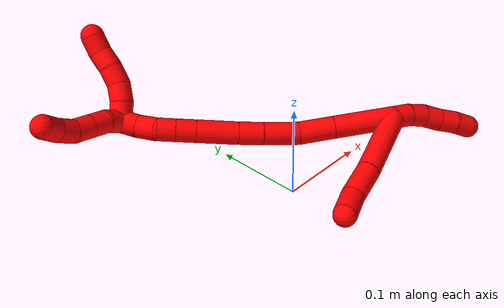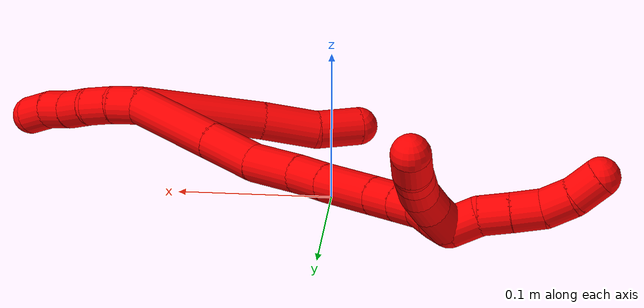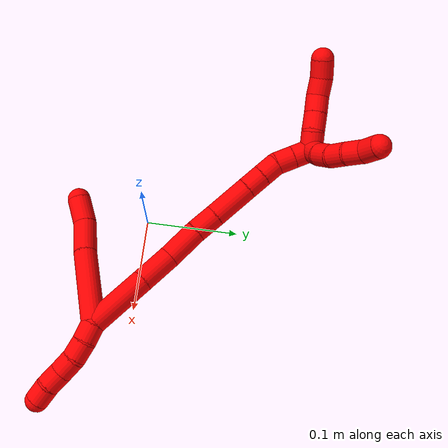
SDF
<sdf version="1.7">
 <world name="default">
  <model name="photoneo_s_sensor">
   <static>1</static>
   <pose>0 0 2 1.57079 1.57079 3.14159</pose>
   <link name="link">
    <inertial><mass>0.1</mass></inertial>
    <sensor name="sensor" type="depth">
     <update_rate>30</update_rate>
     <camera>
      <horizontal_fov>1.22</horizontal_fov>
      <image><width>1920</width><height>1200</height><format>B8G8R8</format></image>
      <clip><near>0.1</near><far>4</far></clip>
      <depth_camera><output>points</output></depth_camera>
     </camera>
     <plugin name="camera_plugin" filename="libgazebo_ros_depth_camera.so">
      <baseline>0.2</baseline>
      <alwaysOn>1</alwaysOn>
      <updateRate>0.0</updateRate>
      <cameraName>camera_ir</cameraName>
      <imageTopicName>/camera/color/image_raw</imageTopicName>
      <cameraInfoTopicName>/camera/color/camera_info</cameraInfoTopicName>
      <depthImageTopicName>/camera/depth/image_raw</depthImageTopicName>
      <depthImageCameraInfoTopicName>/camera/depth/camera_info</depthImageCameraInfoTopicName>
      <pointCloudTopicName>/camera/depth/points</pointCloudTopicName>
      <frameName>fr_optical</frameName>
      <pointCloudCutoff>0.1</pointCloudCutoff>
      <pointCloudCutoffMax>2.0</pointCloudCutoffMax>
      <distortionK1>0</distortionK1>
      <distortionK2>0</distortionK2>
      <distortionK3>0</distortionK3>
      <distortionT1>0</distortionT1>
      <distortionT2>0</distortionT2>
      <CxPrime>0</CxPrime>
      <Cx>0</Cx>
      <Cy>0</Cy>
      <focalLength>0</focalLength>
      <hackBaseline>0</hackBaseline>
     </plugin>
    </sensor>
   </link>
  </model>
  <model name="bin">
   <static>1</static>
   <link name="bottom">
    <collision name="collision-bottom">
     <pose>0 0 -0.01 0 -0 0</pose>
     <geometry><box><size>0.8 0.6 0.02</size></box></geometry>
     <surface>
      <friction><ode><mu>100</mu><mu2>100</mu2></ode></friction>
      <contact><collide_bitmask>65535</collide_bitmask></contact>
     </surface>
    </collision>
   </link>
   <link name="west_wall">
    <collision name="collision-west_wall">
     <pose>-0.41 0 0.1 0 -0 0</pose>
     <geometry><box><size>0.02 0.6 0.2</size></box></geometry>
     <surface>
      <friction><ode><mu>100</mu><mu2>100</mu2></ode></friction>
      <contact><collide_bitmask>65535</collide_bitmask></contact>
     </surface>
    </collision>
   </link>
   <link name="east_wall">
    <collision name="collision-east_wall">
     <pose>0.41 0 0.1 0 -0 0</pose>
     <geometry><box><size>0.02 0.6 0.2</size></box></geometry>
     <surface>
      <friction><ode><mu>100</mu><mu2>100</mu2></ode></friction>
      <contact><collide_bitmask>65535</collide_bitmask></contact>
     </surface>
    </collision>
   </link>
   <link name="south_wall">
    <collision name="collision-south_wall">
     <pose>0 -0.31 0.1 0 -0 0</pose>
     <geometry><box><size>0.8 0.02 0.2</size></box></geometry>
     <surface>
      <friction><ode><mu>100</mu><mu2>100</mu2></ode></friction>
      <contact><collide_bitmask>65535</collide_bitmask></contact>
     </surface>
    </collision>
   </link>
   <link name="north_wall">
    <collision name="collision-north_wall">
     <pose>0 0.31 0.1 0 -0 0</pose>
     <geometry><box><size>0.8 0.02 0.2</size></box></geometry>
     <surface>
      <friction><ode><mu>100</mu><mu2>100</mu2></ode></friction>
      <contact><collide_bitmask>65535</collide_bitmask></contact>
     </surface>
    </collision>
   </link>
  </model>
  <model name="2">
   <static>0</static>
   <link name="2">
    <collision name="collision-cylinder-e_1_2_8">
     <pose>-0.039684 0.00148 -0.012324 -3.02206 -1.26765 2.97913</pose>
     <geometry><cylinder><radius>0.0125</radius><length>0.083159</length></cylinder></geometry>
     <surface>
      <friction><ode><mu>1.16</mu><mu2>1.16</mu2><slip1>0</slip1><slip2>0</slip2></ode></friction>
      <contact><ode><kp>1e+06</kp><kd>1</kd><max_vel>0</max_vel><min_depth>0.001</min_depth></ode></contact>
     </surface>
    </collision>
    <visual name="visual-cylinder-e_1_2_8">
     <pose>-0.039684 0.00148 -0.012324 -3.02206 -1.26765 2.97913</pose>
     <geometry><cylinder><radius>0.0125</radius><length>0.083159</length></cylinder></geometry>
     <material><ambient>1 0 0 1</ambient></material>
    </visual>
    <collision name="collision-cylinder-e_2_8_9">
     <pose>-0.097128 0.005251 -0.03007 -2.74191 -1.25076 2.59463</pose>
     <geometry><cylinder><radius>0.0125</radius><length>0.037421</length></cylinder></geometry>
     <surface>
      <friction><ode><mu>1.16</mu><mu2>1.16</mu2><slip1>0</slip1><slip2>0</slip2></ode></friction>
      <contact><ode><kp>1e+06</kp><kd>1</kd><max_vel>0</max_vel><min_depth>0.001</min_depth></ode></contact>
     </surface>
    </collision>
    <visual name="visual-cylinder-e_2_8_9">
     <pose>-0.097128 0.005251 -0.03007 -2.74191 -1.25076 2.59463</pose>
     <geometry><cylinder><radius>0.0125</radius><length>0.037421</length></cylinder></geometry>
     <material><ambient>1 0 0 1</ambient></material>
    </visual>
    <collision name="collision-cylinder-e_3_9_6">
     <pose>-0.129378 0.006103 -0.037583 2.53883 -1.39744 -2.43281</pose>
     <geometry><cylinder><radius>0.0125</radius><length>0.02942</length></cylinder></geometry>
     <surface>
      <friction><ode><mu>1.16</mu><mu2>1.16</mu2><slip1>0</slip1><slip2>0</slip2></ode></friction>
      <contact><ode><kp>1e+06</kp><kd>1</kd><max_vel>0</max_vel><min_depth>0.001</min_depth></ode></contact>
     </surface>
    </collision>
    <visual name="visual-cylinder-e_3_9_6">
     <pose>-0.129378 0.006103 -0.037583 2.53883 -1.39744 -2.43281</pose>
     <geometry><cylinder><radius>0.0125</radius><length>0.02942</length></cylinder></geometry>
     <material><ambient>1 0 0 1</ambient></material>
    </visual>
    <collision name="collision-cylinder-e_1_2_10">
     <pose>0.008243 -0.00534 -0.001877 1.90886 0.969049 1.27803</pose>
     <geometry><cylinder><radius>0.0125</radius><length>0.02</length></cylinder></geometry>
     <surface>
      <friction><ode><mu>1.16</mu><mu2>1.16</mu2><slip1>0</slip1><slip2>0</slip2></ode></friction>
      <contact><ode><kp>1e+06</kp><kd>1</kd><max_vel>0</max_vel><min_depth>0.001</min_depth></ode></contact>
     </surface>
    </collision>
    <visual name="visual-cylinder-e_1_2_10">
     <pose>0.008243 -0.00534 -0.001877 1.90886 0.969049 1.27803</pose>
     <geometry><cylinder><radius>0.0125</radius><length>0.02</length></cylinder></geometry>
     <material><ambient>1 0 0 1</ambient></material>
    </visual>
    <collision name="collision-cylinder-e_2_10_11">
     <pose>0.023958 -0.016468 -0.007025 2.08507 0.843723 1.31117</pose>
     <geometry><cylinder><radius>0.0125</radius><length>0.02</length></cylinder></geometry>
     <surface>
      <friction><ode><mu>1.16</mu><mu2>1.16</mu2><slip1>0</slip1><slip2>0</slip2></ode></friction>
      <contact><ode><kp>1e+06</kp><kd>1</kd><max_vel>0</max_vel><min_depth>0.001</min_depth></ode></contact>
     </surface>
    </collision>
    <visual name="visual-cylinder-e_2_10_11">
     <pose>0.023958 -0.016468 -0.007025 2.08507 0.843723 1.31117</pose>
     <geometry><cylinder><radius>0.0125</radius><length>0.02</length></cylinder></geometry>
     <material><ambient>1 0 0 1</ambient></material>
    </visual>
    <collision name="collision-cylinder-e_3_11_12">
     <pose>0.037094 -0.028981 -0.015056 2.18685 0.602244 1.08142</pose>
     <geometry><cylinder><radius>0.0125</radius><length>0.02</length></cylinder></geometry>
     <surface>
      <friction><ode><mu>1.16</mu><mu2>1.16</mu2><slip1>0</slip1><slip2>0</slip2></ode></friction>
      <contact><ode><kp>1e+06</kp><kd>1</kd><max_vel>0</max_vel><min_depth>0.001</min_depth></ode></contact>
     </surface>
    </collision>
    <visual name="visual-cylinder-e_3_11_12">
     <pose>0.037094 -0.028981 -0.015056 2.18685 0.602244 1.08142</pose>
     <geometry><cylinder><radius>0.0125</radius><length>0.02</length></cylinder></geometry>
     <material><ambient>1 0 0 1</ambient></material>
    </visual>
    <collision name="collision-cylinder-e_4_12_13">
     <pose>0.048545 -0.042922 -0.023621 2.05592 0.616978 0.971916</pose>
     <geometry><cylinder><radius>0.0125</radius><length>0.02</length></cylinder></geometry>
     <surface>
      <friction><ode><mu>1.16</mu><mu2>1.16</mu2><slip1>0</slip1><slip2>0</slip2></ode></friction>
      <contact><ode><kp>1e+06</kp><kd>1</kd><max_vel>0</max_vel><min_depth>0.001</min_depth></ode></contact>
     </surface>
    </collision>
    <visual name="visual-cylinder-e_4_12_13">
     <pose>0.048545 -0.042922 -0.023621 2.05592 0.616978 0.971916</pose>
     <geometry><cylinder><radius>0.0125</radius><length>0.02</length></cylinder></geometry>
     <material><ambient>1 0 0 1</ambient></material>
    </visual>
    <collision name="collision-cylinder-e_5_13_5">
     <pose>0.060533 -0.056026 -0.032606 2.29235 0.669078 1.31087</pose>
     <geometry><cylinder><radius>0.0125</radius><length>0.02</length></cylinder></geometry>
     <surface>
      <friction><ode><mu>1.16</mu><mu2>1.16</mu2><slip1>0</slip1><slip2>0</slip2></ode></friction>
      <contact><ode><kp>1e+06</kp><kd>1</kd><max_vel>0</max_vel><min_depth>0.001</min_depth></ode></contact>
     </surface>
    </collision>
    <visual name="visual-cylinder-e_5_13_5">
     <pose>0.060533 -0.056026 -0.032606 2.29235 0.669078 1.31087</pose>
     <geometry><cylinder><radius>0.0125</radius><length>0.02</length></cylinder></geometry>
     <material><ambient>1 0 0 1</ambient></material>
    </visual>
    <collision name="collision-cylinder-e_1_2_14">
     <pose>-0.019134 0.027648 0.001197 -1.52752 -0.604947 0.580765</pose>
     <geometry><cylinder><radius>0.0125</radius><length>0.067288</length></cylinder></geometry>
     <surface>
      <friction><ode><mu>1.16</mu><mu2>1.16</mu2><slip1>0</slip1><slip2>0</slip2></ode></friction>
      <contact><ode><kp>1e+06</kp><kd>1</kd><max_vel>0</max_vel><min_depth>0.001</min_depth></ode></contact>
     </surface>
    </collision>
    <visual name="visual-cylinder-e_1_2_14">
     <pose>-0.019134 0.027648 0.001197 -1.52752 -0.604947 0.580765</pose>
     <geometry><cylinder><radius>0.0125</radius><length>0.067288</length></cylinder></geometry>
     <material><ambient>1 0 0 1</ambient></material>
    </visual>
    <collision name="collision-cylinder-e_2_14_15">
     <pose>-0.049393 0.071291 0.002984 -1.53393 -0.607392 0.586666</pose>
     <geometry><cylinder><radius>0.0125</radius><length>0.038986</length></cylinder></geometry>
     <surface>
      <friction><ode><mu>1.16</mu><mu2>1.16</mu2><slip1>0</slip1><slip2>0</slip2></ode></friction>
      <contact><ode><kp>1e+06</kp><kd>1</kd><max_vel>0</max_vel><min_depth>0.001</min_depth></ode></contact>
     </surface>
    </collision>
    <visual name="visual-cylinder-e_2_14_15">
     <pose>-0.049393 0.071291 0.002984 -1.53393 -0.607392 0.586666</pose>
     <geometry><cylinder><radius>0.0125</radius><length>0.038986</length></cylinder></geometry>
     <material><ambient>1 0 0 1</ambient></material>
    </visual>
    <collision name="collision-cylinder-e_3_15_16">
     <pose>-0.072124 0.102686 0.007791 -1.3035 -0.628532 0.48618</pose>
     <geometry><cylinder><radius>0.0125</radius><length>0.039479</length></cylinder></geometry>
     <surface>
      <friction><ode><mu>1.16</mu><mu2>1.16</mu2><slip1>0</slip1><slip2>0</slip2></ode></friction>
      <contact><ode><kp>1e+06</kp><kd>1</kd><max_vel>0</max_vel><min_depth>0.001</min_depth></ode></contact>
     </surface>
    </collision>
    <visual name="visual-cylinder-e_3_15_16">
     <pose>-0.072124 0.102686 0.007791 -1.3035 -0.628532 0.48618</pose>
     <geometry><cylinder><radius>0.0125</radius><length>0.039479</length></cylinder></geometry>
     <material><ambient>1 0 0 1</ambient></material>
    </visual>
    <collision name="collision-cylinder-e_4_16_17">
     <pose>-0.090752 0.129027 0.014929 -1.30993 -0.555037 0.430807</pose>
     <geometry><cylinder><radius>0.0125</radius><length>0.026648</length></cylinder></geometry>
     <surface>
      <friction><ode><mu>1.16</mu><mu2>1.16</mu2><slip1>0</slip1><slip2>0</slip2></ode></friction>
      <contact><ode><kp>1e+06</kp><kd>1</kd><max_vel>0</max_vel><min_depth>0.001</min_depth></ode></contact>
     </surface>
    </collision>
    <visual name="visual-cylinder-e_4_16_17">
     <pose>-0.090752 0.129027 0.014929 -1.30993 -0.555037 0.430807</pose>
     <geometry><cylinder><radius>0.0125</radius><length>0.026648</length></cylinder></geometry>
     <material><ambient>1 0 0 1</ambient></material>
    </visual>
    <collision name="collision-cylinder-e_5_17_18">
     <pose>-0.109784 0.158217 0.023472 -1.27196 -0.561456 0.419512</pose>
     <geometry><cylinder><radius>0.0125</radius><length>0.04512</length></cylinder></geometry>
     <surface>
      <friction><ode><mu>1.16</mu><mu2>1.16</mu2><slip1>0</slip1><slip2>0</slip2></ode></friction>
      <contact><ode><kp>1e+06</kp><kd>1</kd><max_vel>0</max_vel><min_depth>0.001</min_depth></ode></contact>
     </surface>
    </collision>
    <visual name="visual-cylinder-e_5_17_18">
     <pose>-0.109784 0.158217 0.023472 -1.27196 -0.561456 0.419512</pose>
     <geometry><cylinder><radius>0.0125</radius><length>0.04512</length></cylinder></geometry>
     <material><ambient>1 0 0 1</ambient></material>
    </visual>
    <collision name="collision-cylinder-e_6_18_19">
     <pose>-0.127547 0.18526 0.031784 -1.27395 -0.558974 0.418458</pose>
     <geometry><cylinder><radius>0.0125</radius><length>0.021692</length></cylinder></geometry>
     <surface>
      <friction><ode><mu>1.16</mu><mu2>1.16</mu2><slip1>0</slip1><slip2>0</slip2></ode></friction>
      <contact><ode><kp>1e+06</kp><kd>1</kd><max_vel>0</max_vel><min_depth>0.001</min_depth></ode></contact>
     </surface>
    </collision>
    <visual name="visual-cylinder-e_6_18_19">
     <pose>-0.127547 0.18526 0.031784 -1.27395 -0.558974 0.418458</pose>
     <geometry><cylinder><radius>0.0125</radius><length>0.021692</length></cylinder></geometry>
     <material><ambient>1 0 0 1</ambient></material>
    </visual>
    <collision name="collision-cylinder-e_7_19_20">
     <pose>-0.138592 0.202258 0.036968 -1.27559 -0.552939 0.414527</pose>
     <geometry><cylinder><radius>0.0125</radius><length>0.020155</length></cylinder></geometry>
     <surface>
      <friction><ode><mu>1.16</mu><mu2>1.16</mu2><slip1>0</slip1><slip2>0</slip2></ode></friction>
      <contact><ode><kp>1e+06</kp><kd>1</kd><max_vel>0</max_vel><min_depth>0.001</min_depth></ode></contact>
     </surface>
    </collision>
    <visual name="visual-cylinder-e_7_19_20">
     <pose>-0.138592 0.202258 0.036968 -1.27559 -0.552939 0.414527</pose>
     <geometry><cylinder><radius>0.0125</radius><length>0.020155</length></cylinder></geometry>
     <material><ambient>1 0 0 1</ambient></material>
    </visual>
    <collision name="collision-cylinder-e_8_20_21">
     <pose>-0.146284 0.220074 0.041777 -1.33459 -0.238109 0.187934</pose>
     <geometry><cylinder><radius>0.0125</radius><length>0.020345</length></cylinder></geometry>
     <surface>
      <friction><ode><mu>1.16</mu><mu2>1.16</mu2><slip1>0</slip1><slip2>0</slip2></ode></friction>
      <contact><ode><kp>1e+06</kp><kd>1</kd><max_vel>0</max_vel><min_depth>0.001</min_depth></ode></contact>
     </surface>
    </collision>
    <visual name="visual-cylinder-e_8_20_21">
     <pose>-0.146284 0.220074 0.041777 -1.33459 -0.238109 0.187934</pose>
     <geometry><cylinder><radius>0.0125</radius><length>0.020345</length></cylinder></geometry>
     <material><ambient>1 0 0 1</ambient></material>
    </visual>
    <collision name="collision-cylinder-e_9_21_1">
     <pose>-0.150723 0.239014 0.047513 -1.21911 -0.202508 0.141651</pose>
     <geometry><cylinder><radius>0.0125</radius><length>0.020288</length></cylinder></geometry>
     <surface>
      <friction><ode><mu>1.16</mu><mu2>1.16</mu2><slip1>0</slip1><slip2>0</slip2></ode></friction>
      <contact><ode><kp>1e+06</kp><kd>1</kd><max_vel>0</max_vel><min_depth>0.001</min_depth></ode></contact>
     </surface>
    </collision>
    <visual name="visual-cylinder-e_9_21_1">
     <pose>-0.150723 0.239014 0.047513 -1.21911 -0.202508 0.141651</pose>
     <geometry><cylinder><radius>0.0125</radius><length>0.020288</length></cylinder></geometry>
     <material><ambient>1 0 0 1</ambient></material>
    </visual>
    <collision name="collision-cylinder-e_1_1_22">
     <pose>-0.14737 0.248992 0.059332 -0.077223 0.569662 -0.02262</pose>
     <geometry><cylinder><radius>0.0125</radius><length>0.02</length></cylinder></geometry>
     <surface>
      <friction><ode><mu>1.16</mu><mu2>1.16</mu2><slip1>0</slip1><slip2>0</slip2></ode></friction>
      <contact><ode><kp>1e+06</kp><kd>1</kd><max_vel>0</max_vel><min_depth>0.001</min_depth></ode></contact>
     </surface>
    </collision>
    <visual name="visual-cylinder-e_1_1_22">
     <pose>-0.14737 0.248992 0.059332 -0.077223 0.569662 -0.02262</pose>
     <geometry><cylinder><radius>0.0125</radius><length>0.02</length></cylinder></geometry>
     <material><ambient>1 0 0 1</ambient></material>
    </visual>
    <collision name="collision-cylinder-e_2_22_23">
     <pose>-0.13778 0.252379 0.076382 -0.306372 0.433094 -0.067907</pose>
     <geometry><cylinder><radius>0.0125</radius><length>0.02</length></cylinder></geometry>
     <surface>
      <friction><ode><mu>1.16</mu><mu2>1.16</mu2><slip1>0</slip1><slip2>0</slip2></ode></friction>
      <contact><ode><kp>1e+06</kp><kd>1</kd><max_vel>0</max_vel><min_depth>0.001</min_depth></ode></contact>
     </surface>
    </collision>
    <visual name="visual-cylinder-e_2_22_23">
     <pose>-0.13778 0.252379 0.076382 -0.306372 0.433094 -0.067907</pose>
     <geometry><cylinder><radius>0.0125</radius><length>0.02</length></cylinder></geometry>
     <material><ambient>1 0 0 1</ambient></material>
    </visual>
    <collision name="collision-cylinder-e_3_23_24">
     <pose>-0.131538 0.259724 0.093672 -0.490138 0.205951 -0.051679</pose>
     <geometry><cylinder><radius>0.0125</radius><length>0.02</length></cylinder></geometry>
     <surface>
      <friction><ode><mu>1.16</mu><mu2>1.16</mu2><slip1>0</slip1><slip2>0</slip2></ode></friction>
      <contact><ode><kp>1e+06</kp><kd>1</kd><max_vel>0</max_vel><min_depth>0.001</min_depth></ode></contact>
     </surface>
    </collision>
    <visual name="visual-cylinder-e_3_23_24">
     <pose>-0.131538 0.259724 0.093672 -0.490138 0.205951 -0.051679</pose>
     <geometry><cylinder><radius>0.0125</radius><length>0.02</length></cylinder></geometry>
     <material><ambient>1 0 0 1</ambient></material>
    </visual>
    <collision name="collision-cylinder-e_4_24_25">
     <pose>-0.127622 0.270473 0.109975 -0.675281 0.188241 -0.06626</pose>
     <geometry><cylinder><radius>0.0125</radius><length>0.02</length></cylinder></geometry>
     <surface>
      <friction><ode><mu>1.16</mu><mu2>1.16</mu2><slip1>0</slip1><slip2>0</slip2></ode></friction>
      <contact><ode><kp>1e+06</kp><kd>1</kd><max_vel>0</max_vel><min_depth>0.001</min_depth></ode></contact>
     </surface>
    </collision>
    <visual name="visual-cylinder-e_4_24_25">
     <pose>-0.127622 0.270473 0.109975 -0.675281 0.188241 -0.06626</pose>
     <geometry><cylinder><radius>0.0125</radius><length>0.02</length></cylinder></geometry>
     <material><ambient>1 0 0 1</ambient></material>
    </visual>
    <collision name="collision-cylinder-e_5_25_4">
     <pose>-0.124718 0.280247 0.126902 -0.373914 0.103386 -0.019574</pose>
     <geometry><cylinder><radius>0.0125</radius><length>0.02</length></cylinder></geometry>
     <surface>
      <friction><ode><mu>1.16</mu><mu2>1.16</mu2><slip1>0</slip1><slip2>0</slip2></ode></friction>
      <contact><ode><kp>1e+06</kp><kd>1</kd><max_vel>0</max_vel><min_depth>0.001</min_depth></ode></contact>
     </surface>
    </collision>
    <visual name="visual-cylinder-e_5_25_4">
     <pose>-0.124718 0.280247 0.126902 -0.373914 0.103386 -0.019574</pose>
     <geometry><cylinder><radius>0.0125</radius><length>0.02</length></cylinder></geometry>
     <material><ambient>1 0 0 1</ambient></material>
    </visual>
    <collision name="collision-cylinder-e_1_1_26">
     <pose>-0.161883 0.249821 0.054763 -0.368762 -1.14809 0.240056</pose>
     <geometry><cylinder><radius>0.0125</radius><length>0.02</length></cylinder></geometry>
     <surface>
      <friction><ode><mu>1.16</mu><mu2>1.16</mu2><slip1>0</slip1><slip2>0</slip2></ode></friction>
      <contact><ode><kp>1e+06</kp><kd>1</kd><max_vel>0</max_vel><min_depth>0.001</min_depth></ode></contact>
     </surface>
    </collision>
    <visual name="visual-cylinder-e_1_1_26">
     <pose>-0.161883 0.249821 0.054763 -0.368762 -1.14809 0.240056</pose>
     <geometry><cylinder><radius>0.0125</radius><length>0.02</length></cylinder></geometry>
     <material><ambient>1 0 0 1</ambient></material>
    </visual>
    <collision name="collision-cylinder-e_2_26_27">
     <pose>-0.180526 0.254024 0.059962 -1.10404 -1.26076 0.844724</pose>
     <geometry><cylinder><radius>0.0125</radius><length>0.02</length></cylinder></geometry>
     <surface>
      <friction><ode><mu>1.16</mu><mu2>1.16</mu2><slip1>0</slip1><slip2>0</slip2></ode></friction>
      <contact><ode><kp>1e+06</kp><kd>1</kd><max_vel>0</max_vel><min_depth>0.001</min_depth></ode></contact>
     </surface>
    </collision>
    <visual name="visual-cylinder-e_2_26_27">
     <pose>-0.180526 0.254024 0.059962 -1.10404 -1.26076 0.844724</pose>
     <geometry><cylinder><radius>0.0125</radius><length>0.02</length></cylinder></geometry>
     <material><ambient>1 0 0 1</ambient></material>
    </visual>
    <collision name="collision-cylinder-e_3_27_28">
     <pose>-0.199639 0.259189 0.062778 -1.0369 -1.28333 0.805843</pose>
     <geometry><cylinder><radius>0.0125</radius><length>0.02</length></cylinder></geometry>
     <surface>
      <friction><ode><mu>1.16</mu><mu2>1.16</mu2><slip1>0</slip1><slip2>0</slip2></ode></friction>
      <contact><ode><kp>1e+06</kp><kd>1</kd><max_vel>0</max_vel><min_depth>0.001</min_depth></ode></contact>
     </surface>
    </collision>
    <visual name="visual-cylinder-e_3_27_28">
     <pose>-0.199639 0.259189 0.062778 -1.0369 -1.28333 0.805843</pose>
     <geometry><cylinder><radius>0.0125</radius><length>0.02</length></cylinder></geometry>
     <material><ambient>1 0 0 1</ambient></material>
    </visual>
    <collision name="collision-cylinder-e_4_28_29">
     <pose>-0.217877 0.263865 0.068716 -0.461511 -1.04486 0.268923</pose>
     <geometry><cylinder><radius>0.0125</radius><length>0.02</length></cylinder></geometry>
     <surface>
      <friction><ode><mu>1.16</mu><mu2>1.16</mu2><slip1>0</slip1><slip2>0</slip2></ode></friction>
      <contact><ode><kp>1e+06</kp><kd>1</kd><max_vel>0</max_vel><min_depth>0.001</min_depth></ode></contact>
     </surface>
    </collision>
    <visual name="visual-cylinder-e_4_28_29">
     <pose>-0.217877 0.263865 0.068716 -0.461511 -1.04486 0.268923</pose>
     <geometry><cylinder><radius>0.0125</radius><length>0.02</length></cylinder></geometry>
     <material><ambient>1 0 0 1</ambient></material>
    </visual>
    <collision name="collision-cylinder-e_5_29_3">
     <pose>-0.234754 0.266092 0.078893 0.001538 -0.966381 -0.000807</pose>
     <geometry><cylinder><radius>0.0125</radius><length>0.02</length></cylinder></geometry>
     <surface>
      <friction><ode><mu>1.16</mu><mu2>1.16</mu2><slip1>0</slip1><slip2>0</slip2></ode></friction>
      <contact><ode><kp>1e+06</kp><kd>1</kd><max_vel>0</max_vel><min_depth>0.001</min_depth></ode></contact>
     </surface>
    </collision>
    <visual name="visual-cylinder-e_5_29_3">
     <pose>-0.234754 0.266092 0.078893 0.001538 -0.966381 -0.000807</pose>
     <geometry><cylinder><radius>0.0125</radius><length>0.02</length></cylinder></geometry>
     <material><ambient>1 0 0 1</ambient></material>
    </visual>
    <collision name="collision-sphere-3">
     <pose>-0.242983 0.266083 0.084576 0 -0 0</pose>
     <geometry><sphere><radius>0.0125</radius></sphere></geometry>
     <surface>
      <friction><ode><mu>1.16</mu><mu2>1.16</mu2><slip1>0</slip1><slip2>0</slip2></ode></friction>
      <contact><ode><kp>1e+06</kp><kd>1</kd><max_vel>0</max_vel><min_depth>0.001</min_depth></ode></contact>
     </surface>
    </collision>
    <visual name="visual-sphere-3">
     <pose>-0.242983 0.266083 0.084576 0 -0 0</pose>
     <geometry><sphere><radius>0.0125</radius></sphere></geometry>
     <material><ambient>1 0 0 1</ambient></material>
    </visual>
    <collision name="collision-sphere-29">
     <pose>-0.226526 0.266101 0.07321 0 -0 0</pose>
     <geometry><sphere><radius>0.0125</radius></sphere></geometry>
     <surface>
      <friction><ode><mu>1.16</mu><mu2>1.16</mu2><slip1>0</slip1><slip2>0</slip2></ode></friction>
      <contact><ode><kp>1e+06</kp><kd>1</kd><max_vel>0</max_vel><min_depth>0.001</min_depth></ode></contact>
     </surface>
    </collision>
    <visual name="visual-sphere-29">
     <pose>-0.226526 0.266101 0.07321 0 -0 0</pose>
     <geometry><sphere><radius>0.0125</radius></sphere></geometry>
     <material><ambient>1 0 0 1</ambient></material>
    </visual>
    <collision name="collision-sphere-28">
     <pose>-0.209229 0.26163 0.064221 0 -0 0</pose>
     <geometry><sphere><radius>0.0125</radius></sphere></geometry>
     <surface>
      <friction><ode><mu>1.16</mu><mu2>1.16</mu2><slip1>0</slip1><slip2>0</slip2></ode></friction>
      <contact><ode><kp>1e+06</kp><kd>1</kd><max_vel>0</max_vel><min_depth>0.001</min_depth></ode></contact>
     </surface>
    </collision>
    <visual name="visual-sphere-28">
     <pose>-0.209229 0.26163 0.064221 0 -0 0</pose>
     <geometry><sphere><radius>0.0125</radius></sphere></geometry>
     <material><ambient>1 0 0 1</ambient></material>
    </visual>
    <collision name="collision-sphere-27">
     <pose>-0.19005 0.256749 0.061335 0 -0 0</pose>
     <geometry><sphere><radius>0.0125</radius></sphere></geometry>
     <surface>
      <friction><ode><mu>1.16</mu><mu2>1.16</mu2><slip1>0</slip1><slip2>0</slip2></ode></friction>
      <contact><ode><kp>1e+06</kp><kd>1</kd><max_vel>0</max_vel><min_depth>0.001</min_depth></ode></contact>
     </surface>
    </collision>
    <visual name="visual-sphere-27">
     <pose>-0.19005 0.256749 0.061335 0 -0 0</pose>
     <geometry><sphere><radius>0.0125</radius></sphere></geometry>
     <material><ambient>1 0 0 1</ambient></material>
    </visual>
    <collision name="collision-sphere-26">
     <pose>-0.171003 0.251299 0.058589 0 -0 0</pose>
     <geometry><sphere><radius>0.0125</radius></sphere></geometry>
     <surface>
      <friction><ode><mu>1.16</mu><mu2>1.16</mu2><slip1>0</slip1><slip2>0</slip2></ode></friction>
      <contact><ode><kp>1e+06</kp><kd>1</kd><max_vel>0</max_vel><min_depth>0.001</min_depth></ode></contact>
     </surface>
    </collision>
    <visual name="visual-sphere-26">
     <pose>-0.171003 0.251299 0.058589 0 -0 0</pose>
     <geometry><sphere><radius>0.0125</radius></sphere></geometry>
     <material><ambient>1 0 0 1</ambient></material>
    </visual>
    <collision name="collision-sphere-4">
     <pose>-0.123686 0.28388 0.136162 0 -0 0</pose>
     <geometry><sphere><radius>0.0125</radius></sphere></geometry>
     <surface>
      <friction><ode><mu>1.16</mu><mu2>1.16</mu2><slip1>0</slip1><slip2>0</slip2></ode></friction>
      <contact><ode><kp>1e+06</kp><kd>1</kd><max_vel>0</max_vel><min_depth>0.001</min_depth></ode></contact>
     </surface>
    </collision>
    <visual name="visual-sphere-4">
     <pose>-0.123686 0.28388 0.136162 0 -0 0</pose>
     <geometry><sphere><radius>0.0125</radius></sphere></geometry>
     <material><ambient>1 0 0 1</ambient></material>
    </visual>
    <collision name="collision-sphere-25">
     <pose>-0.12575 0.276614 0.117643 0 -0 0</pose>
     <geometry><sphere><radius>0.0125</radius></sphere></geometry>
     <surface>
      <friction><ode><mu>1.16</mu><mu2>1.16</mu2><slip1>0</slip1><slip2>0</slip2></ode></friction>
      <contact><ode><kp>1e+06</kp><kd>1</kd><max_vel>0</max_vel><min_depth>0.001</min_depth></ode></contact>
     </surface>
    </collision>
    <visual name="visual-sphere-25">
     <pose>-0.12575 0.276614 0.117643 0 -0 0</pose>
     <geometry><sphere><radius>0.0125</radius></sphere></geometry>
     <material><ambient>1 0 0 1</ambient></material>
    </visual>
    <collision name="collision-sphere-24">
     <pose>-0.129493 0.264332 0.102308 0 -0 0</pose>
     <geometry><sphere><radius>0.0125</radius></sphere></geometry>
     <surface>
      <friction><ode><mu>1.16</mu><mu2>1.16</mu2><slip1>0</slip1><slip2>0</slip2></ode></friction>
      <contact><ode><kp>1e+06</kp><kd>1</kd><max_vel>0</max_vel><min_depth>0.001</min_depth></ode></contact>
     </surface>
    </collision>
    <visual name="visual-sphere-24">
     <pose>-0.129493 0.264332 0.102308 0 -0 0</pose>
     <geometry><sphere><radius>0.0125</radius></sphere></geometry>
     <material><ambient>1 0 0 1</ambient></material>
    </visual>
    <collision name="collision-sphere-23">
     <pose>-0.133583 0.255116 0.085036 0 -0 0</pose>
     <geometry><sphere><radius>0.0125</radius></sphere></geometry>
     <surface>
      <friction><ode><mu>1.16</mu><mu2>1.16</mu2><slip1>0</slip1><slip2>0</slip2></ode></friction>
      <contact><ode><kp>1e+06</kp><kd>1</kd><max_vel>0</max_vel><min_depth>0.001</min_depth></ode></contact>
     </surface>
    </collision>
    <visual name="visual-sphere-23">
     <pose>-0.133583 0.255116 0.085036 0 -0 0</pose>
     <geometry><sphere><radius>0.0125</radius></sphere></geometry>
     <material><ambient>1 0 0 1</ambient></material>
    </visual>
    <collision name="collision-sphere-22">
     <pose>-0.141976 0.249641 0.067727 0 -0 0</pose>
     <geometry><sphere><radius>0.0125</radius></sphere></geometry>
     <surface>
      <friction><ode><mu>1.16</mu><mu2>1.16</mu2><slip1>0</slip1><slip2>0</slip2></ode></friction>
      <contact><ode><kp>1e+06</kp><kd>1</kd><max_vel>0</max_vel><min_depth>0.001</min_depth></ode></contact>
     </surface>
    </collision>
    <visual name="visual-sphere-22">
     <pose>-0.141976 0.249641 0.067727 0 -0 0</pose>
     <geometry><sphere><radius>0.0125</radius></sphere></geometry>
     <material><ambient>1 0 0 1</ambient></material>
    </visual>
    <collision name="collision-sphere-1">
     <pose>-0.152763 0.248342 0.050936 0 -0 0</pose>
     <geometry><sphere><radius>0.0125</radius></sphere></geometry>
     <surface>
      <friction><ode><mu>1.16</mu><mu2>1.16</mu2><slip1>0</slip1><slip2>0</slip2></ode></friction>
      <contact><ode><kp>1e+06</kp><kd>1</kd><max_vel>0</max_vel><min_depth>0.001</min_depth></ode></contact>
     </surface>
    </collision>
    <visual name="visual-sphere-1">
     <pose>-0.152763 0.248342 0.050936 0 -0 0</pose>
     <geometry><sphere><radius>0.0125</radius></sphere></geometry>
     <material><ambient>1 0 0 1</ambient></material>
    </visual>
    <collision name="collision-sphere-21">
     <pose>-0.148683 0.229685 0.04409 0 -0 0</pose>
     <geometry><sphere><radius>0.0125</radius></sphere></geometry>
     <surface>
      <friction><ode><mu>1.16</mu><mu2>1.16</mu2><slip1>0</slip1><slip2>0</slip2></ode></friction>
      <contact><ode><kp>1e+06</kp><kd>1</kd><max_vel>0</max_vel><min_depth>0.001</min_depth></ode></contact>
     </surface>
    </collision>
    <visual name="visual-sphere-21">
     <pose>-0.148683 0.229685 0.04409 0 -0 0</pose>
     <geometry><sphere><radius>0.0125</radius></sphere></geometry>
     <material><ambient>1 0 0 1</ambient></material>
    </visual>
    <collision name="collision-sphere-11">
     <pose>0.031429 -0.022255 -0.010294 0 -0 0</pose>
     <geometry><sphere><radius>0.0125</radius></sphere></geometry>
     <surface>
      <friction><ode><mu>1.16</mu><mu2>1.16</mu2><slip1>0</slip1><slip2>0</slip2></ode></friction>
      <contact><ode><kp>1e+06</kp><kd>1</kd><max_vel>0</max_vel><min_depth>0.001</min_depth></ode></contact>
     </surface>
    </collision>
    <visual name="visual-sphere-11">
     <pose>0.031429 -0.022255 -0.010294 0 -0 0</pose>
     <geometry><sphere><radius>0.0125</radius></sphere></geometry>
     <material><ambient>1 0 0 1</ambient></material>
    </visual>
    <collision name="collision-sphere-10">
     <pose>0.016487 -0.010681 -0.003755 0 -0 0</pose>
     <geometry><sphere><radius>0.0125</radius></sphere></geometry>
     <surface>
      <friction><ode><mu>1.16</mu><mu2>1.16</mu2><slip1>0</slip1><slip2>0</slip2></ode></friction>
      <contact><ode><kp>1e+06</kp><kd>1</kd><max_vel>0</max_vel><min_depth>0.001</min_depth></ode></contact>
     </surface>
    </collision>
    <visual name="visual-sphere-10">
     <pose>0.016487 -0.010681 -0.003755 0 -0 0</pose>
     <geometry><sphere><radius>0.0125</radius></sphere></geometry>
     <material><ambient>1 0 0 1</ambient></material>
    </visual>
    <collision name="collision-sphere-6">
     <pose>-0.143867 0.004664 -0.039673 0 -0 0</pose>
     <geometry><sphere><radius>0.0125</radius></sphere></geometry>
     <surface>
      <friction><ode><mu>1.16</mu><mu2>1.16</mu2><slip1>0</slip1><slip2>0</slip2></ode></friction>
      <contact><ode><kp>1e+06</kp><kd>1</kd><max_vel>0</max_vel><min_depth>0.001</min_depth></ode></contact>
     </surface>
    </collision>
    <visual name="visual-sphere-6">
     <pose>-0.143867 0.004664 -0.039673 0 -0 0</pose>
     <geometry><sphere><radius>0.0125</radius></sphere></geometry>
     <material><ambient>1 0 0 1</ambient></material>
    </visual>
    <collision name="collision-sphere-9">
     <pose>-0.114888 0.007541 -0.035492 0 -0 0</pose>
     <geometry><sphere><radius>0.0125</radius></sphere></geometry>
     <surface>
      <friction><ode><mu>1.16</mu><mu2>1.16</mu2><slip1>0</slip1><slip2>0</slip2></ode></friction>
      <contact><ode><kp>1e+06</kp><kd>1</kd><max_vel>0</max_vel><min_depth>0.001</min_depth></ode></contact>
     </surface>
    </collision>
    <visual name="visual-sphere-9">
     <pose>-0.114888 0.007541 -0.035492 0 -0 0</pose>
     <geometry><sphere><radius>0.0125</radius></sphere></geometry>
     <material><ambient>1 0 0 1</ambient></material>
    </visual>
    <collision name="collision-sphere-2">
     <geometry><sphere><radius>0.0125</radius></sphere></geometry>
     <surface>
      <friction><ode><mu>1.16</mu><mu2>1.16</mu2><slip1>0</slip1><slip2>0</slip2></ode></friction>
      <contact><ode><kp>1e+06</kp><kd>1</kd><max_vel>0</max_vel><min_depth>0.001</min_depth></ode></contact>
     </surface>
    </collision>
    <visual name="visual-sphere-2">
     <geometry><sphere><radius>0.0125</radius></sphere></geometry>
     <material><ambient>1 0 0 1</ambient></material>
    </visual>
    <collision name="collision-sphere-19">
     <pose>-0.133299 0.194054 0.034474 0 -0 0</pose>
     <geometry><sphere><radius>0.0125</radius></sphere></geometry>
     <surface>
      <friction><ode><mu>1.16</mu><mu2>1.16</mu2><slip1>0</slip1><slip2>0</slip2></ode></friction>
      <contact><ode><kp>1e+06</kp><kd>1</kd><max_vel>0</max_vel><min_depth>0.001</min_depth></ode></contact>
     </surface>
    </collision>
    <visual name="visual-sphere-19">
     <pose>-0.133299 0.194054 0.034474 0 -0 0</pose>
     <geometry><sphere><radius>0.0125</radius></sphere></geometry>
     <material><ambient>1 0 0 1</ambient></material>
    </visual>
    <collision name="collision-sphere-8">
     <pose>-0.079367 0.00296 -0.024648 0 -0 0</pose>
     <geometry><sphere><radius>0.0125</radius></sphere></geometry>
     <surface>
      <friction><ode><mu>1.16</mu><mu2>1.16</mu2><slip1>0</slip1><slip2>0</slip2></ode></friction>
      <contact><ode><kp>1e+06</kp><kd>1</kd><max_vel>0</max_vel><min_depth>0.001</min_depth></ode></contact>
     </surface>
    </collision>
    <visual name="visual-sphere-8">
     <pose>-0.079367 0.00296 -0.024648 0 -0 0</pose>
     <geometry><sphere><radius>0.0125</radius></sphere></geometry>
     <material><ambient>1 0 0 1</ambient></material>
    </visual>
    <collision name="collision-sphere-12">
     <pose>0.042759 -0.035706 -0.019818 0 -0 0</pose>
     <geometry><sphere><radius>0.0125</radius></sphere></geometry>
     <surface>
      <friction><ode><mu>1.16</mu><mu2>1.16</mu2><slip1>0</slip1><slip2>0</slip2></ode></friction>
      <contact><ode><kp>1e+06</kp><kd>1</kd><max_vel>0</max_vel><min_depth>0.001</min_depth></ode></contact>
     </surface>
    </collision>
    <visual name="visual-sphere-12">
     <pose>0.042759 -0.035706 -0.019818 0 -0 0</pose>
     <geometry><sphere><radius>0.0125</radius></sphere></geometry>
     <material><ambient>1 0 0 1</ambient></material>
    </visual>
    <collision name="collision-sphere-13">
     <pose>0.054331 -0.050137 -0.027424 0 -0 0</pose>
     <geometry><sphere><radius>0.0125</radius></sphere></geometry>
     <surface>
      <friction><ode><mu>1.16</mu><mu2>1.16</mu2><slip1>0</slip1><slip2>0</slip2></ode></friction>
      <contact><ode><kp>1e+06</kp><kd>1</kd><max_vel>0</max_vel><min_depth>0.001</min_depth></ode></contact>
     </surface>
    </collision>
    <visual name="visual-sphere-13">
     <pose>0.054331 -0.050137 -0.027424 0 -0 0</pose>
     <geometry><sphere><radius>0.0125</radius></sphere></geometry>
     <material><ambient>1 0 0 1</ambient></material>
    </visual>
    <collision name="collision-sphere-5">
     <pose>0.066736 -0.061915 -0.037787 0 -0 0</pose>
     <geometry><sphere><radius>0.0125</radius></sphere></geometry>
     <surface>
      <friction><ode><mu>1.16</mu><mu2>1.16</mu2><slip1>0</slip1><slip2>0</slip2></ode></friction>
      <contact><ode><kp>1e+06</kp><kd>1</kd><max_vel>0</max_vel><min_depth>0.001</min_depth></ode></contact>
     </surface>
    </collision>
    <visual name="visual-sphere-5">
     <pose>0.066736 -0.061915 -0.037787 0 -0 0</pose>
     <geometry><sphere><radius>0.0125</radius></sphere></geometry>
     <material><ambient>1 0 0 1</ambient></material>
    </visual>
    <collision name="collision-sphere-14">
     <pose>-0.038268 0.055295 0.002394 0 -0 0</pose>
     <geometry><sphere><radius>0.0125</radius></sphere></geometry>
     <surface>
      <friction><ode><mu>1.16</mu><mu2>1.16</mu2><slip1>0</slip1><slip2>0</slip2></ode></friction>
      <contact><ode><kp>1e+06</kp><kd>1</kd><max_vel>0</max_vel><min_depth>0.001</min_depth></ode></contact>
     </surface>
    </collision>
    <visual name="visual-sphere-14">
     <pose>-0.038268 0.055295 0.002394 0 -0 0</pose>
     <geometry><sphere><radius>0.0125</radius></sphere></geometry>
     <material><ambient>1 0 0 1</ambient></material>
    </visual>
    <collision name="collision-sphere-15">
     <pose>-0.060518 0.087286 0.003574 0 -0 0</pose>
     <geometry><sphere><radius>0.0125</radius></sphere></geometry>
     <surface>
      <friction><ode><mu>1.16</mu><mu2>1.16</mu2><slip1>0</slip1><slip2>0</slip2></ode></friction>
      <contact><ode><kp>1e+06</kp><kd>1</kd><max_vel>0</max_vel><min_depth>0.001</min_depth></ode></contact>
     </surface>
    </collision>
    <visual name="visual-sphere-15">
     <pose>-0.060518 0.087286 0.003574 0 -0 0</pose>
     <geometry><sphere><radius>0.0125</radius></sphere></geometry>
     <material><ambient>1 0 0 1</ambient></material>
    </visual>
    <collision name="collision-sphere-16">
     <pose>-0.08373 0.118086 0.012009 0 -0 0</pose>
     <geometry><sphere><radius>0.0125</radius></sphere></geometry>
     <surface>
      <friction><ode><mu>1.16</mu><mu2>1.16</mu2><slip1>0</slip1><slip2>0</slip2></ode></friction>
      <contact><ode><kp>1e+06</kp><kd>1</kd><max_vel>0</max_vel><min_depth>0.001</min_depth></ode></contact>
     </surface>
    </collision>
    <visual name="visual-sphere-16">
     <pose>-0.08373 0.118086 0.012009 0 -0 0</pose>
     <geometry><sphere><radius>0.0125</radius></sphere></geometry>
     <material><ambient>1 0 0 1</ambient></material>
    </visual>
    <collision name="collision-sphere-17">
     <pose>-0.097773 0.139967 0.01785 0 -0 0</pose>
     <geometry><sphere><radius>0.0125</radius></sphere></geometry>
     <surface>
      <friction><ode><mu>1.16</mu><mu2>1.16</mu2><slip1>0</slip1><slip2>0</slip2></ode></friction>
      <contact><ode><kp>1e+06</kp><kd>1</kd><max_vel>0</max_vel><min_depth>0.001</min_depth></ode></contact>
     </surface>
    </collision>
    <visual name="visual-sphere-17">
     <pose>-0.097773 0.139967 0.01785 0 -0 0</pose>
     <geometry><sphere><radius>0.0125</radius></sphere></geometry>
     <material><ambient>1 0 0 1</ambient></material>
    </visual>
    <collision name="collision-sphere-18">
     <pose>-0.121796 0.176467 0.029094 0 -0 0</pose>
     <geometry><sphere><radius>0.0125</radius></sphere></geometry>
     <surface>
      <friction><ode><mu>1.16</mu><mu2>1.16</mu2><slip1>0</slip1><slip2>0</slip2></ode></friction>
      <contact><ode><kp>1e+06</kp><kd>1</kd><max_vel>0</max_vel><min_depth>0.001</min_depth></ode></contact>
     </surface>
    </collision>
    <visual name="visual-sphere-18">
     <pose>-0.121796 0.176467 0.029094 0 -0 0</pose>
     <geometry><sphere><radius>0.0125</radius></sphere></geometry>
     <material><ambient>1 0 0 1</ambient></material>
    </visual>
    <collision name="collision-sphere-20">
     <pose>-0.143884 0.210463 0.039463 0 -0 0</pose>
     <geometry><sphere><radius>0.0125</radius></sphere></geometry>
     <surface>
      <friction><ode><mu>1.16</mu><mu2>1.16</mu2><slip1>0</slip1><slip2>0</slip2></ode></friction>
      <contact><ode><kp>1e+06</kp><kd>1</kd><max_vel>0</max_vel><min_depth>0.001</min_depth></ode></contact>
     </surface>
    </collision>
    <visual name="visual-sphere-20">
     <pose>-0.143884 0.210463 0.039463 0 -0 0</pose>
     <geometry><sphere><radius>0.0125</radius></sphere></geometry>
     <material><ambient>1 0 0 1</ambient></material>
    </visual>
    <inertial>
     <pose>-0.087299 0.115057 0.02157 0 -0 0</pose>
     <mass>0.75</mass>
     <inertia><ixx>4.7e-05</ixx><ixy>0</ixy><ixz>0</ixz><iyy>0.000151</iyy><iyz>0</iyz><izz>4.6e-05</izz></inertia>
    </inertial>
   </link>
   <pose>0.129028 -0.033227 0.045979 -0.213492 0.088119 0.278264</pose>
  </model>
 </world>
</sdf>
